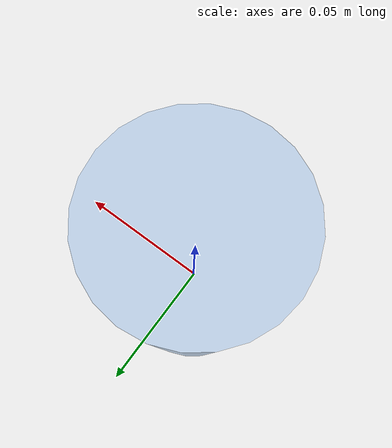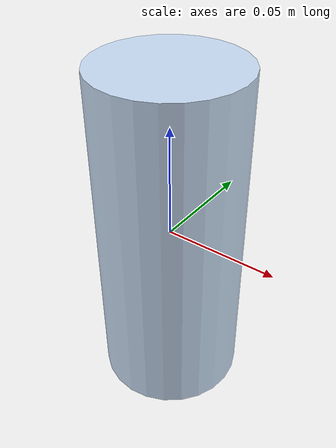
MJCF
<?xml version="1.0" encoding="UTF-8"?>
<!-- Clean-room source-only fallback for the VLABench drink family. -->
<mujoco model="libero_vlabench_drink_primitive">
  <worldbody>
    <body>
      <body name="object">
        <geom name="drink_visual" type="cylinder" group="1" contype="0" conaffinity="0"
              size="0.032 0.075" rgba="0.78 0.86 0.95 1"/>
        <geom name="drink_collision" type="cylinder" group="0" size="0.030 0.073"
              mass="0.10"/>
      </body>
      <site name="bottom_site" pos="0 0 -0.075" size="0.005" rgba="0 0 0 0"/>
      <site name="top_site" pos="0 0 0.075" size="0.005" rgba="0 0 0 0"/>
      <site name="horizontal_radius_site" pos="0.032 0 0" size="0.005" rgba="0 0 0 0"/>
    </body>
  </worldbody>
</mujoco>
